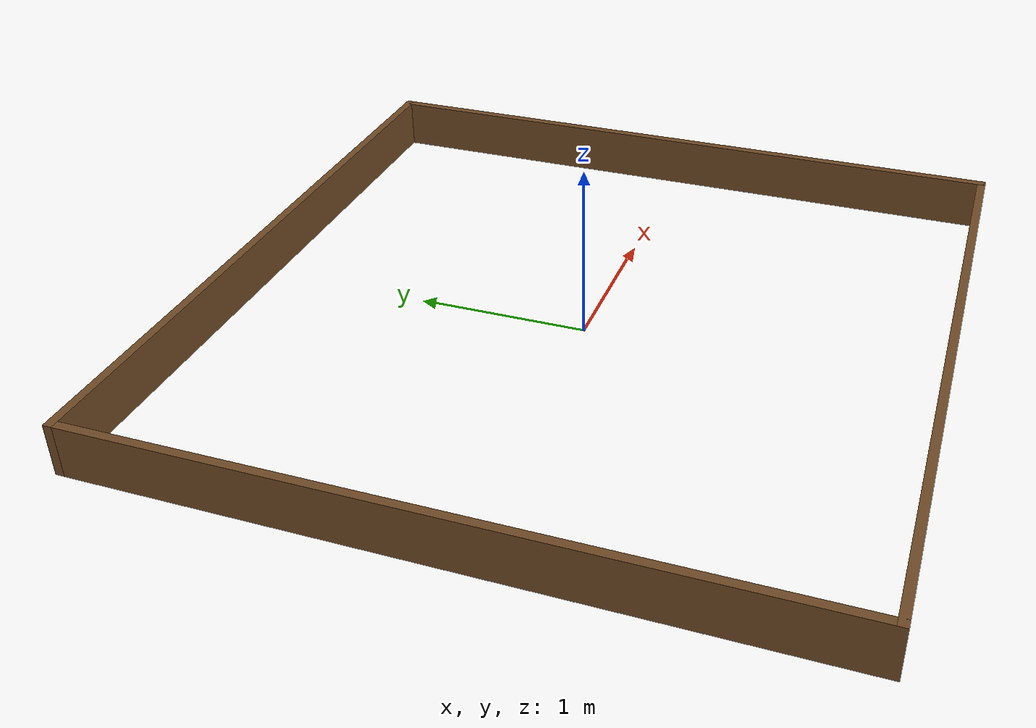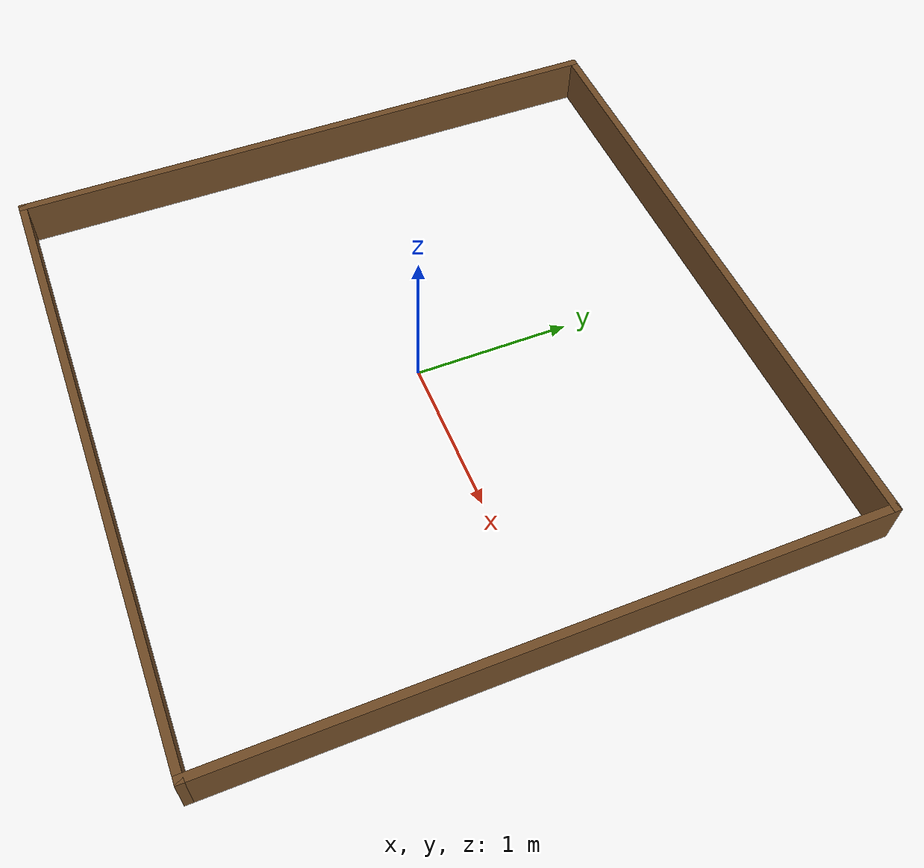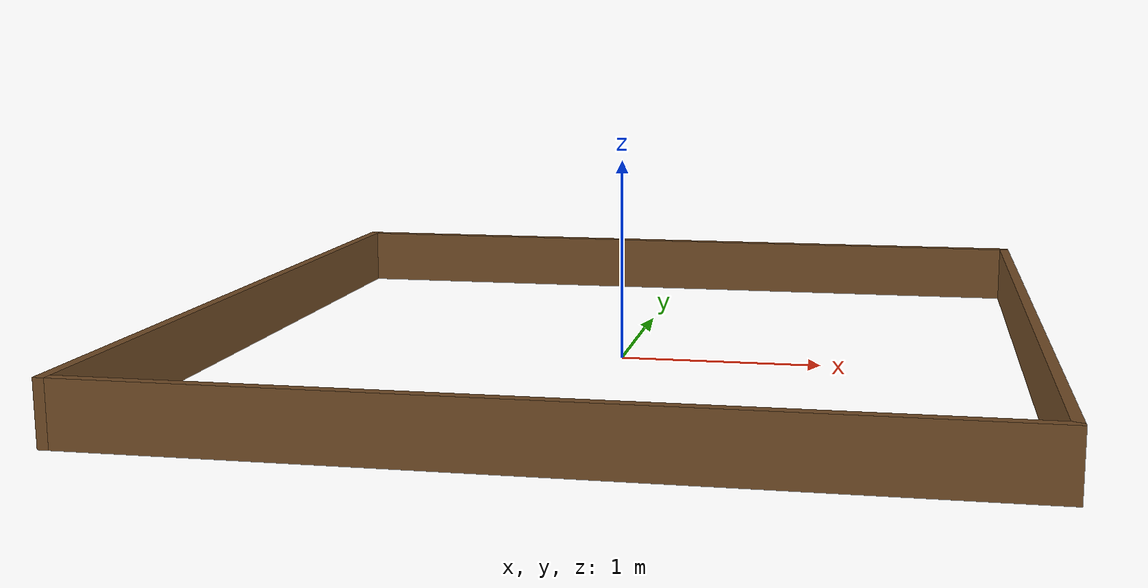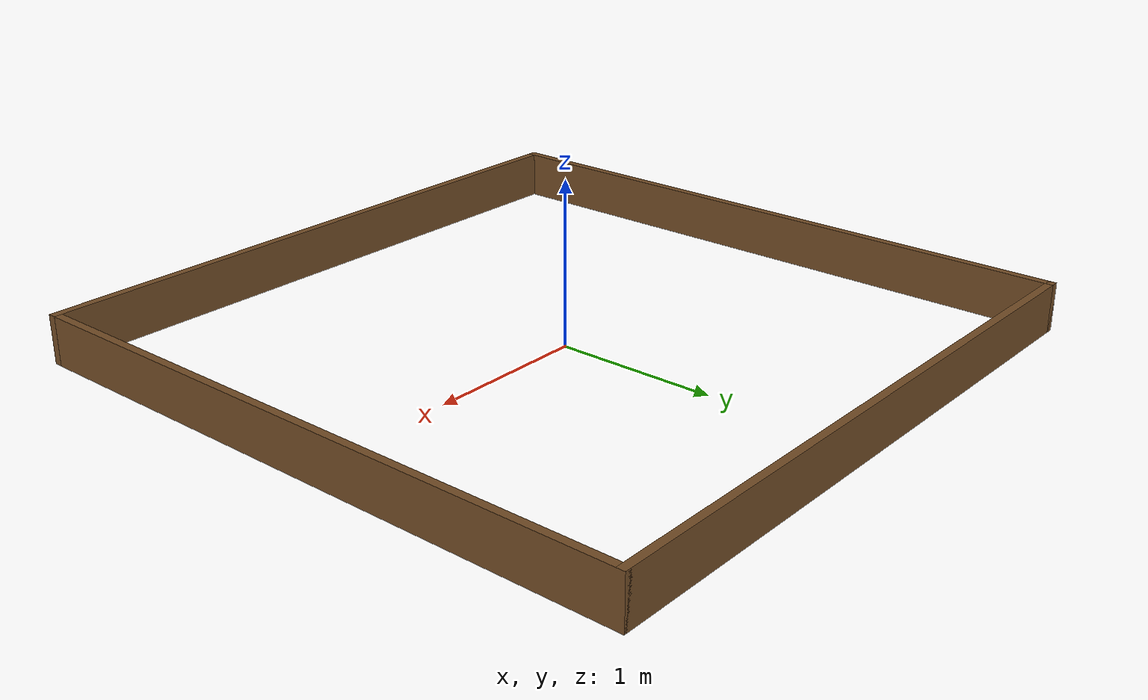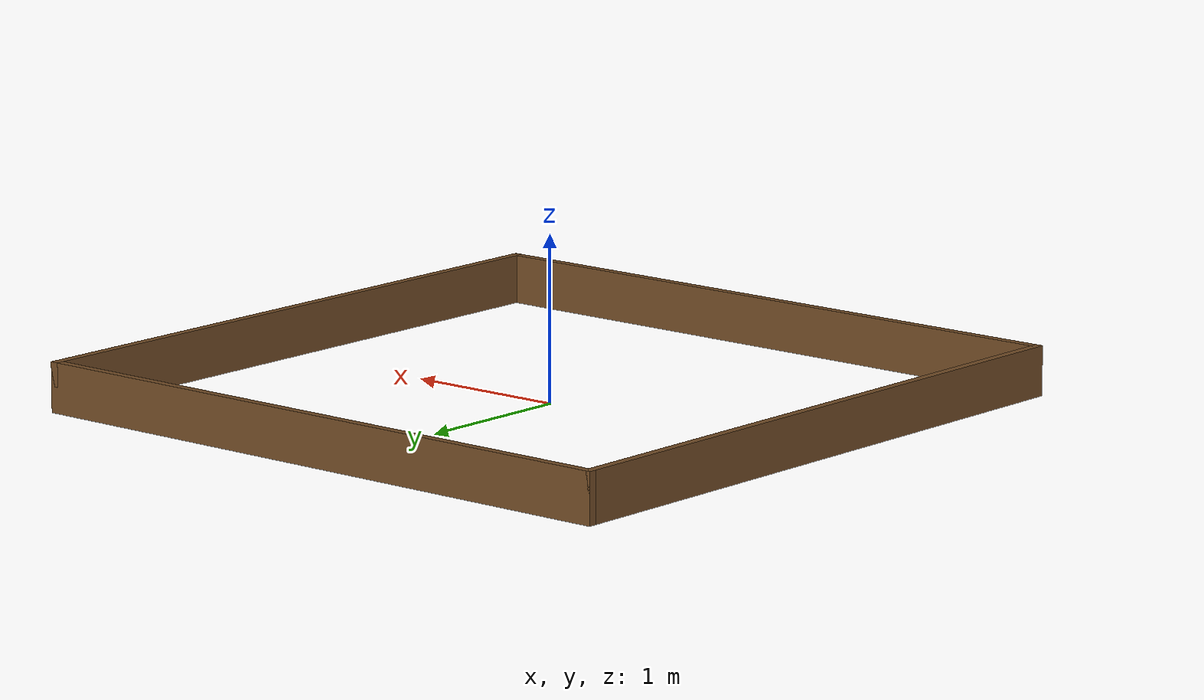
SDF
<?xml version='1.0'?>
<sdf version='1.7'>
  <model name='square4m'>
    <pose>0 0 0 0 -0 0</pose>
    <link name='Wall_10'>
      <collision name='Wall_10_Collision'>
        <geometry>
          <box>
            <size>4.05 0.05 0.3</size>
          </box>
        </geometry>
        <pose>0 0 0.15 0 -0 0</pose>
      </collision>
      <visual name='Wall_10_Visual'>
        <pose>0 0 0.15 0 -0 0</pose>
        <geometry>
          <box>
            <size>4.05 0.05 0.3</size>
          </box>
        </geometry>
        <material>
          <ambient>0.45 0.30 0.15 1</ambient>
          <diffuse>0.45 0.30 0.15 1</diffuse>
          <specular>0.05 0.05 0.05 1</specular>
        </material>
        <meta>
          <layer>0</layer>
        </meta>
      </visual>
      <pose>0 2 0 0 -0 0</pose>
    </link>
    <link name='Wall_12'>
      <collision name='Wall_12_Collision'>
        <geometry>
          <box>
            <size>4.05 0.05 0.3</size>
          </box>
        </geometry>
        <pose>0 0 0.15 0 -0 0</pose>
      </collision>
      <visual name='Wall_12_Visual'>
        <pose>0 0 0.15 0 -0 0</pose>
        <geometry>
          <box>
            <size>4.05 0.05 0.3</size>
          </box>
        </geometry>
        <material>
          <ambient>0.45 0.30 0.15 1</ambient>
          <diffuse>0.45 0.30 0.15 1</diffuse>
          <specular>0.05 0.05 0.05 1</specular>
        </material>
        <meta>
          <layer>0</layer>
        </meta>
      </visual>
      <pose>2 0 0 0 -0 -1.5708</pose>
    </link>
    <link name='Wall_14'>
      <collision name='Wall_14_Collision'>
        <geometry>
          <box>
            <size>4.05 0.05 0.3</size>
          </box>
        </geometry>
        <pose>0 0 0.15 0 -0 0</pose>
      </collision>
      <visual name='Wall_14_Visual'>
        <pose>0 0 0.15 0 -0 0</pose>
        <geometry>
          <box>
            <size>4.05 0.05 0.3</size>
          </box>
        </geometry>
        <material>
          <ambient>0.45 0.30 0.15 1</ambient>
          <diffuse>0.45 0.30 0.15 1</diffuse>
          <specular>0.05 0.05 0.05 1</specular>
        </material>
        <meta>
          <layer>0</layer>
        </meta>
      </visual>
      <pose>0 -2 0 0 -0 3.14159</pose>
    </link>
    <link name='Wall_8'>
      <collision name='Wall_8_Collision'>
        <geometry>
          <box>
            <size>4.05 0.05 0.3</size>
          </box>
        </geometry>
        <pose>0 0 0.15 0 -0 0</pose>
      </collision>
      <visual name='Wall_8_Visual'>
        <pose>0 0 0.15 0 -0 0</pose>
        <geometry>
          <box>
            <size>4.05 0.05 0.3</size>
          </box>
        </geometry>
        <material>
          <ambient>0.45 0.30 0.15 1</ambient>
          <diffuse>0.45 0.30 0.15 1</diffuse>
          <specular>0.05 0.05 0.05 1</specular>
        </material>
        <meta>
          <layer>0</layer>
        </meta>
      </visual>
      <pose>-2 0 0 0 -0 -1.5708</pose>
    </link>
    <static>1</static>
  </model>
</sdf>
